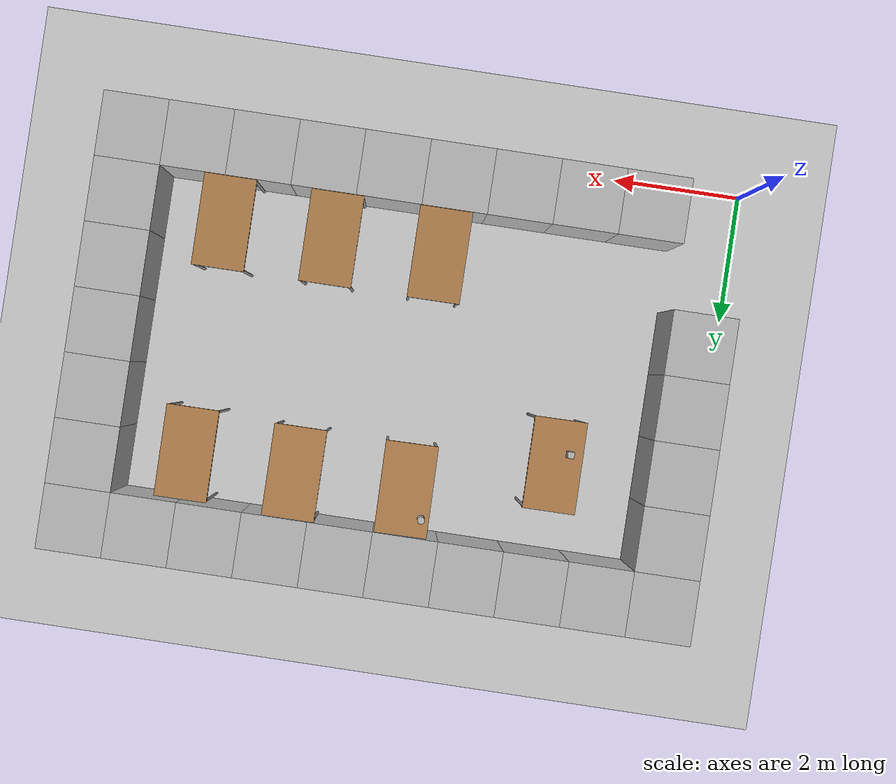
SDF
<sdf version="1.6">
 <world name="default">
  <light name="sun" type="directional">
   <diffuse>0.8 0.8 0.8 1</diffuse>
   <specular>0.1 0.1 0.1 1</specular>
   <attenuation>
    <range>1000</range>
    <constant>0.9</constant>
    <linear>0.01</linear>
    <quadratic>0.001</quadratic>
   </attenuation>
   <direction>-0.5 0.5 -1</direction>
  </light>
  <model name="box_0_2">
   <pose>0.5 2.5 0.5 0 -0 0</pose>
   <static>1</static>
   <link name="link">
    <collision name="collision"><geometry><box><size>1 1 1</size></box></geometry></collision>
    <visual name="visual"><geometry><box><size>1 1 1</size></box></geometry></visual>
   </link>
  </model>
  <model name="box_0_3">
   <pose>0.5 3.5 0.5 0 -0 0</pose>
   <static>1</static>
   <link name="link">
    <collision name="collision"><geometry><box><size>1 1 1</size></box></geometry></collision>
    <visual name="visual"><geometry><box><size>1 1 1</size></box></geometry></visual>
   </link>
  </model>
  <model name="box_0_4">
   <pose>0.5 4.5 0.5 0 -0 0</pose>
   <static>1</static>
   <link name="link">
    <collision name="collision"><geometry><box><size>1 1 1</size></box></geometry></collision>
    <visual name="visual"><geometry><box><size>1 1 1</size></box></geometry></visual>
   </link>
  </model>
  <model name="box_0_5">
   <pose>0.5 5.5 0.5 0 -0 0</pose>
   <static>1</static>
   <link name="link">
    <collision name="collision"><geometry><box><size>1 1 1</size></box></geometry></collision>
    <visual name="visual"><geometry><box><size>1 1 1</size></box></geometry></visual>
   </link>
  </model>
  <model name="box_0_6">
   <pose>0.5 6.5 0.5 0 -0 0</pose>
   <static>1</static>
   <link name="link">
    <collision name="collision"><geometry><box><size>1 1 1</size></box></geometry></collision>
    <visual name="visual"><geometry><box><size>1 1 1</size></box></geometry></visual>
   </link>
  </model>
  <model name="box_1_0">
   <pose>1.5 0.5 0.5 0 -0 0</pose>
   <static>1</static>
   <link name="link">
    <collision name="collision"><geometry><box><size>1 1 1</size></box></geometry></collision>
    <visual name="visual"><geometry><box><size>1 1 1</size></box></geometry></visual>
   </link>
  </model>
  <model name="box_1_6">
   <pose>1.5 6.5 0.5 0 -0 0</pose>
   <static>1</static>
   <link name="link">
    <collision name="collision"><geometry><box><size>1 1 1</size></box></geometry></collision>
    <visual name="visual"><geometry><box><size>1 1 1</size></box></geometry></visual>
   </link>
  </model>
  <model name="box_2_0">
   <pose>2.5 0.5 0.5 0 -0 0</pose>
   <static>1</static>
   <link name="link">
    <collision name="collision"><geometry><box><size>1 1 1</size></box></geometry></collision>
    <visual name="visual"><geometry><box><size>1 1 1</size></box></geometry></visual>
   </link>
  </model>
  <model name="box_2_6">
   <pose>2.5 6.5 0.5 0 -0 0</pose>
   <static>1</static>
   <link name="link">
    <collision name="collision"><geometry><box><size>1 1 1</size></box></geometry></collision>
    <visual name="visual"><geometry><box><size>1 1 1</size></box></geometry></visual>
   </link>
  </model>
  <model name="box_3_0">
   <pose>3.5 0.5 0.5 0 -0 0</pose>
   <static>1</static>
   <link name="link">
    <collision name="collision"><geometry><box><size>1 1 1</size></box></geometry></collision>
    <visual name="visual"><geometry><box><size>1 1 1</size></box></geometry></visual>
   </link>
  </model>
  <model name="box_3_6">
   <pose>3.5 6.5 0.5 0 -0 0</pose>
   <static>1</static>
   <link name="link">
    <collision name="collision"><geometry><box><size>1 1 1</size></box></geometry></collision>
    <visual name="visual"><geometry><box><size>1 1 1</size></box></geometry></visual>
   </link>
  </model>
  <model name="box_4_0">
   <pose>4.5 0.5 0.5 0 -0 0</pose>
   <static>1</static>
   <link name="link">
    <collision name="collision"><geometry><box><size>1 1 1</size></box></geometry></collision>
    <visual name="visual"><geometry><box><size>1 1 1</size></box></geometry></visual>
   </link>
  </model>
  <model name="box_4_6">
   <pose>4.5 6.5 0.5 0 -0 0</pose>
   <static>1</static>
   <link name="link">
    <collision name="collision"><geometry><box><size>1 1 1</size></box></geometry></collision>
    <visual name="visual"><geometry><box><size>1 1 1</size></box></geometry></visual>
   </link>
  </model>
  <model name="box_5_0">
   <pose>5.5 0.5 0.5 0 -0 0</pose>
   <static>1</static>
   <link name="link">
    <collision name="collision"><geometry><box><size>1 1 1</size></box></geometry></collision>
    <visual name="visual"><geometry><box><size>1 1 1</size></box></geometry></visual>
   </link>
  </model>
  <model name="box_5_6">
   <pose>5.5 6.5 0.5 0 -0 0</pose>
   <static>1</static>
   <link name="link">
    <collision name="collision"><geometry><box><size>1 1 1</size></box></geometry></collision>
    <visual name="visual"><geometry><box><size>1 1 1</size></box></geometry></visual>
   </link>
  </model>
  <model name="box_6_0">
   <pose>6.5 0.5 0.5 0 -0 0</pose>
   <static>1</static>
   <link name="link">
    <collision name="collision"><geometry><box><size>1 1 1</size></box></geometry></collision>
    <visual name="visual"><geometry><box><size>1 1 1</size></box></geometry></visual>
   </link>
  </model>
  <model name="box_6_6">
   <pose>6.5 6.5 0.5 0 -0 0</pose>
   <static>1</static>
   <link name="link">
    <collision name="collision"><geometry><box><size>1 1 1</size></box></geometry></collision>
    <visual name="visual"><geometry><box><size>1 1 1</size></box></geometry></visual>
   </link>
  </model>
  <model name="box_7_0">
   <pose>7.5 0.5 0.5 0 -0 0</pose>
   <static>1</static>
   <link name="link">
    <collision name="collision"><geometry><box><size>1 1 1</size></box></geometry></collision>
    <visual name="visual"><geometry><box><size>1 1 1</size></box></geometry></visual>
   </link>
  </model>
  <model name="box_7_6">
   <pose>7.5 6.5 0.5 0 -0 0</pose>
   <static>1</static>
   <link name="link">
    <collision name="collision"><geometry><box><size>1 1 1</size></box></geometry></collision>
    <visual name="visual"><geometry><box><size>1 1 1</size></box></geometry></visual>
   </link>
  </model>
  <model name="box_8_0">
   <pose>8.5 0.5 0.5 0 -0 0</pose>
   <static>1</static>
   <link name="link">
    <collision name="collision"><geometry><box><size>1 1 1</size></box></geometry></collision>
    <visual name="visual"><geometry><box><size>1 1 1</size></box></geometry></visual>
   </link>
  </model>
  <model name="box_8_6">
   <pose>8.5 6.5 0.5 0 -0 0</pose>
   <static>1</static>
   <link name="link">
    <collision name="collision"><geometry><box><size>1 1 1</size></box></geometry></collision>
    <visual name="visual"><geometry><box><size>1 1 1</size></box></geometry></visual>
   </link>
  </model>
  <model name="box_9_0">
   <pose>9.5 0.5 0.5 0 -0 0</pose>
   <static>1</static>
   <link name="link">
    <collision name="collision"><geometry><box><size>1 1 1</size></box></geometry></collision>
    <visual name="visual"><geometry><box><size>1 1 1</size></box></geometry></visual>
   </link>
  </model>
  <model name="box_9_1">
   <pose>9.5 1.5 0.5 0 -0 0</pose>
   <static>1</static>
   <link name="link">
    <collision name="collision"><geometry><box><size>1 1 1</size></box></geometry></collision>
    <visual name="visual"><geometry><box><size>1 1 1</size></box></geometry></visual>
   </link>
  </model>
  <model name="box_9_2">
   <pose>9.5 2.5 0.5 0 -0 0</pose>
   <static>1</static>
   <link name="link">
    <collision name="collision"><geometry><box><size>1 1 1</size></box></geometry></collision>
    <visual name="visual"><geometry><box><size>1 1 1</size></box></geometry></visual>
   </link>
  </model>
  <model name="box_9_3">
   <pose>9.5 3.5 0.5 0 -0 0</pose>
   <static>1</static>
   <link name="link">
    <collision name="collision"><geometry><box><size>1 1 1</size></box></geometry></collision>
    <visual name="visual"><geometry><box><size>1 1 1</size></box></geometry></visual>
   </link>
  </model>
  <model name="box_9_4">
   <pose>9.5 4.5 0.5 0 -0 0</pose>
   <static>1</static>
   <link name="link">
    <collision name="collision"><geometry><box><size>1 1 1</size></box></geometry></collision>
    <visual name="visual"><geometry><box><size>1 1 1</size></box></geometry></visual>
   </link>
  </model>
  <model name="box_9_5">
   <pose>9.5 5.5 0.5 0 -0 0</pose>
   <static>1</static>
   <link name="link">
    <collision name="collision"><geometry><box><size>1 1 1</size></box></geometry></collision>
    <visual name="visual"><geometry><box><size>1 1 1</size></box></geometry></visual>
   </link>
  </model>
  <model name="box_9_6">
   <pose>9.5 6.5 0.5 0 -0 0</pose>
   <static>1</static>
   <link name="link">
    <collision name="collision"><geometry><box><size>1 1 1</size></box></geometry></collision>
    <visual name="visual"><geometry><box><size>1 1 1</size></box></geometry></visual>
   </link>
  </model>
  <gravity>0 0 -9.8</gravity>
  <magnetic_field>6e-06 2.3e-05 -4.2e-05</magnetic_field>
  <atmosphere type="adiabatic"/>
  <physics name="default_physics" default="0" type="ode">
   <max_step_size>0.001</max_step_size>
   <real_time_factor>1</real_time_factor>
   <real_time_update_rate>1000</real_time_update_rate>
  </physics>
  <scene><ambient>0.4 0.4 0.4 1</ambient><background>0.7 0.7 0.7 1</background><shadows>1</shadows></scene>
  <spherical_coordinates>
   <surface_model>EARTH_WGS84</surface_model>
   <latitude_deg>0</latitude_deg>
   <longitude_deg>0</longitude_deg>
   <elevation>0</elevation>
   <heading_deg>0</heading_deg>
  </spherical_coordinates>
  <model name="table">
   <static>0</static>
   <link name="link">
    <collision name="surface">
     <pose>0 0 1 0 -0 0</pose>
     <geometry><box><size>1.5 0.8 0.03</size></box></geometry>
     <surface><friction><ode><mu>0.6</mu><mu2>0.6</mu2></ode></friction></surface>
    </collision>
    <visual name="visual1">
     <pose>0 0 1 0 -0 0</pose>
     <geometry><box><size>1.4 0.8 0.04</size></box></geometry>
     <material>
      <script><uri>file://media/materials/scripts/gazebo.material</uri><name>Gazebo/Wood</name></script>
     </material>
    </visual>
    <collision name="front_left_leg">
     <pose>0.68 0.38 0.5 0 -0 0</pose>
     <geometry><cylinder><radius>0.02</radius><length>1</length></cylinder></geometry>
    </collision>
    <visual name="front_left_leg">
     <pose>0.68 0.38 0.5 0 -0 0</pose>
     <geometry><cylinder><radius>0.02</radius><length>1</length></cylinder></geometry>
     <material>
      <script><uri>file://media/materials/scripts/gazebo.material</uri><name>Gazebo/Grey</name></script>
     </material>
    </visual>
    <collision name="front_right_leg">
     <pose>0.68 -0.38 0.5 0 -0 0</pose>
     <geometry><cylinder><radius>0.02</radius><length>1</length></cylinder></geometry>
    </collision>
    <visual name="front_right_leg">
     <pose>0.68 -0.38 0.5 0 -0 0</pose>
     <geometry><cylinder><radius>0.02</radius><length>1</length></cylinder></geometry>
     <material>
      <script><uri>file://media/materials/scripts/gazebo.material</uri><name>Gazebo/Grey</name></script>
     </material>
    </visual>
    <collision name="back_right_leg">
     <pose>-0.68 -0.38 0.5 0 -0 0</pose>
     <geometry><cylinder><radius>0.02</radius><length>1</length></cylinder></geometry>
    </collision>
    <visual name="back_right_leg">
     <pose>-0.68 -0.38 0.5 0 -0 0</pose>
     <geometry><cylinder><radius>0.02</radius><length>1</length></cylinder></geometry>
     <material>
      <script><uri>file://media/materials/scripts/gazebo.material</uri><name>Gazebo/Grey</name></script>
     </material>
    </visual>
    <collision name="back_left_leg">
     <pose>-0.68 0.38 0.5 0 -0 0</pose>
     <geometry><cylinder><radius>0.02</radius><length>1</length></cylinder></geometry>
    </collision>
    <visual name="back_left_leg">
     <pose>-0.68 0.38 0.5 0 -0 0</pose>
     <geometry><cylinder><radius>0.02</radius><length>1</length></cylinder></geometry>
     <material>
      <script><uri>file://media/materials/scripts/gazebo.material</uri><name>Gazebo/Grey</name></script>
     </material>
    </visual>
    <inertial>
     <inertia><ixx>1</ixx><ixy>0</ixy><ixz>0</ixz><iyy>1</iyy><iyz>0</iyz><izz>1</izz></inertia>
     <mass>1</mass>
    </inertial>
   </link>
   <pose>2.42928 4.59259 -2e-06 -1e-06 0 1.57609</pose>
  </model>
  <model name="table_clone">
   <static>0</static>
   <link name="link">
    <collision name="surface">
     <pose>0 0 1 0 -0 0</pose>
     <geometry><box><size>1.5 0.8 0.03</size></box></geometry>
     <surface><friction><ode><mu>0.6</mu><mu2>0.6</mu2></ode></friction></surface>
    </collision>
    <visual name="visual1">
     <pose>0 0 1 0 -0 0</pose>
     <geometry><box><size>1.4 0.8 0.04</size></box></geometry>
     <material>
      <script><uri>file://media/materials/scripts/gazebo.material</uri><name>Gazebo/Wood</name></script>
     </material>
    </visual>
    <collision name="front_left_leg">
     <pose>0.68 0.38 0.5 0 -0 0</pose>
     <geometry><cylinder><radius>0.02</radius><length>1</length></cylinder></geometry>
    </collision>
    <visual name="front_left_leg">
     <pose>0.68 0.38 0.5 0 -0 0</pose>
     <geometry><cylinder><radius>0.02</radius><length>1</length></cylinder></geometry>
     <material>
      <script><uri>file://media/materials/scripts/gazebo.material</uri><name>Gazebo/Grey</name></script>
     </material>
    </visual>
    <collision name="front_right_leg">
     <pose>0.68 -0.38 0.5 0 -0 0</pose>
     <geometry><cylinder><radius>0.02</radius><length>1</length></cylinder></geometry>
    </collision>
    <visual name="front_right_leg">
     <pose>0.68 -0.38 0.5 0 -0 0</pose>
     <geometry><cylinder><radius>0.02</radius><length>1</length></cylinder></geometry>
     <material>
      <script><uri>file://media/materials/scripts/gazebo.material</uri><name>Gazebo/Grey</name></script>
     </material>
    </visual>
    <collision name="back_right_leg">
     <pose>-0.68 -0.38 0.5 0 -0 0</pose>
     <geometry><cylinder><radius>0.02</radius><length>1</length></cylinder></geometry>
    </collision>
    <visual name="back_right_leg">
     <pose>-0.68 -0.38 0.5 0 -0 0</pose>
     <geometry><cylinder><radius>0.02</radius><length>1</length></cylinder></geometry>
     <material>
      <script><uri>file://media/materials/scripts/gazebo.material</uri><name>Gazebo/Grey</name></script>
     </material>
    </visual>
    <collision name="back_left_leg">
     <pose>-0.68 0.38 0.5 0 -0 0</pose>
     <geometry><cylinder><radius>0.02</radius><length>1</length></cylinder></geometry>
    </collision>
    <visual name="back_left_leg">
     <pose>-0.68 0.38 0.5 0 -0 0</pose>
     <geometry><cylinder><radius>0.02</radius><length>1</length></cylinder></geometry>
     <material>
      <script><uri>file://media/materials/scripts/gazebo.material</uri><name>Gazebo/Grey</name></script>
     </material>
    </visual>
    <inertial>
     <inertia><ixx>1</ixx><ixy>0</ixy><ixz>0</ixz><iyy>1</iyy><iyz>0</iyz><izz>1</izz></inertia>
     <mass>1</mass>
    </inertial>
   </link>
   <pose>4.59278 5.29472 -0.000524 -0.001198 -0.009085 1.58478</pose>
  </model>
  <model name="table_clone_clone">
   <static>0</static>
   <link name="link">
    <collision name="surface">
     <pose>0 0 1 0 -0 0</pose>
     <geometry><box><size>1.5 0.8 0.03</size></box></geometry>
     <surface><friction><ode><mu>0.6</mu><mu2>0.6</mu2></ode></friction></surface>
    </collision>
    <visual name="visual1">
     <pose>0 0 1 0 -0 0</pose>
     <geometry><box><size>1.4 0.8 0.04</size></box></geometry>
     <material>
      <script><uri>file://media/materials/scripts/gazebo.material</uri><name>Gazebo/Wood</name></script>
     </material>
    </visual>
    <collision name="front_left_leg">
     <pose>0.68 0.38 0.5 0 -0 0</pose>
     <geometry><cylinder><radius>0.02</radius><length>1</length></cylinder></geometry>
    </collision>
    <visual name="front_left_leg">
     <pose>0.68 0.38 0.5 0 -0 0</pose>
     <geometry><cylinder><radius>0.02</radius><length>1</length></cylinder></geometry>
     <material>
      <script><uri>file://media/materials/scripts/gazebo.material</uri><name>Gazebo/Grey</name></script>
     </material>
    </visual>
    <collision name="front_right_leg">
     <pose>0.68 -0.38 0.5 0 -0 0</pose>
     <geometry><cylinder><radius>0.02</radius><length>1</length></cylinder></geometry>
    </collision>
    <visual name="front_right_leg">
     <pose>0.68 -0.38 0.5 0 -0 0</pose>
     <geometry><cylinder><radius>0.02</radius><length>1</length></cylinder></geometry>
     <material>
      <script><uri>file://media/materials/scripts/gazebo.material</uri><name>Gazebo/Grey</name></script>
     </material>
    </visual>
    <collision name="back_right_leg">
     <pose>-0.68 -0.38 0.5 0 -0 0</pose>
     <geometry><cylinder><radius>0.02</radius><length>1</length></cylinder></geometry>
    </collision>
    <visual name="back_right_leg">
     <pose>-0.68 -0.38 0.5 0 -0 0</pose>
     <geometry><cylinder><radius>0.02</radius><length>1</length></cylinder></geometry>
     <material>
      <script><uri>file://media/materials/scripts/gazebo.material</uri><name>Gazebo/Grey</name></script>
     </material>
    </visual>
    <collision name="back_left_leg">
     <pose>-0.68 0.38 0.5 0 -0 0</pose>
     <geometry><cylinder><radius>0.02</radius><length>1</length></cylinder></geometry>
    </collision>
    <visual name="back_left_leg">
     <pose>-0.68 0.38 0.5 0 -0 0</pose>
     <geometry><cylinder><radius>0.02</radius><length>1</length></cylinder></geometry>
     <material>
      <script><uri>file://media/materials/scripts/gazebo.material</uri><name>Gazebo/Grey</name></script>
     </material>
    </visual>
    <inertial>
     <inertia><ixx>1</ixx><ixy>0</ixy><ixz>0</ixz><iyy>1</iyy><iyz>0</iyz><izz>1</izz></inertia>
     <mass>1</mass>
    </inertial>
   </link>
   <pose>6.29753 5.29892 0.007472 -3.2e-05 -0.010657 1.57376</pose>
  </model>
  <model name="table_clone_clone_0">
   <static>0</static>
   <link name="link">
    <collision name="surface">
     <pose>0 0 1 0 -0 0</pose>
     <geometry><box><size>1.5 0.8 0.03</size></box></geometry>
     <surface><friction><ode><mu>0.6</mu><mu2>0.6</mu2></ode></friction></surface>
    </collision>
    <visual name="visual1">
     <pose>0 0 1 0 -0 0</pose>
     <geometry><box><size>1.4 0.8 0.04</size></box></geometry>
     <material>
      <script><uri>file://media/materials/scripts/gazebo.material</uri><name>Gazebo/Wood</name></script>
     </material>
    </visual>
    <collision name="front_left_leg">
     <pose>0.68 0.38 0.5 0 -0 0</pose>
     <geometry><cylinder><radius>0.02</radius><length>1</length></cylinder></geometry>
    </collision>
    <visual name="front_left_leg">
     <pose>0.68 0.38 0.5 0 -0 0</pose>
     <geometry><cylinder><radius>0.02</radius><length>1</length></cylinder></geometry>
     <material>
      <script><uri>file://media/materials/scripts/gazebo.material</uri><name>Gazebo/Grey</name></script>
     </material>
    </visual>
    <collision name="front_right_leg">
     <pose>0.68 -0.38 0.5 0 -0 0</pose>
     <geometry><cylinder><radius>0.02</radius><length>1</length></cylinder></geometry>
    </collision>
    <visual name="front_right_leg">
     <pose>0.68 -0.38 0.5 0 -0 0</pose>
     <geometry><cylinder><radius>0.02</radius><length>1</length></cylinder></geometry>
     <material>
      <script><uri>file://media/materials/scripts/gazebo.material</uri><name>Gazebo/Grey</name></script>
     </material>
    </visual>
    <collision name="back_right_leg">
     <pose>-0.68 -0.38 0.5 0 -0 0</pose>
     <geometry><cylinder><radius>0.02</radius><length>1</length></cylinder></geometry>
    </collision>
    <visual name="back_right_leg">
     <pose>-0.68 -0.38 0.5 0 -0 0</pose>
     <geometry><cylinder><radius>0.02</radius><length>1</length></cylinder></geometry>
     <material>
      <script><uri>file://media/materials/scripts/gazebo.material</uri><name>Gazebo/Grey</name></script>
     </material>
    </visual>
    <collision name="back_left_leg">
     <pose>-0.68 0.38 0.5 0 -0 0</pose>
     <geometry><cylinder><radius>0.02</radius><length>1</length></cylinder></geometry>
    </collision>
    <visual name="back_left_leg">
     <pose>-0.68 0.38 0.5 0 -0 0</pose>
     <geometry><cylinder><radius>0.02</radius><length>1</length></cylinder></geometry>
     <material>
      <script><uri>file://media/materials/scripts/gazebo.material</uri><name>Gazebo/Grey</name></script>
     </material>
    </visual>
    <inertial>
     <inertia><ixx>1</ixx><ixy>0</ixy><ixz>0</ixz><iyy>1</iyy><iyz>0</iyz><izz>1</izz></inertia>
     <mass>1</mass>
    </inertial>
   </link>
   <pose>7.94709 5.23838 -1e-06 0 -1e-06 1.57672</pose>
  </model>
  <model name="table_clone_clone_1">
   <static>0</static>
   <link name="link">
    <collision name="surface">
     <pose>0 0 1 0 -0 0</pose>
     <geometry><box><size>1.5 0.8 0.03</size></box></geometry>
     <surface><friction><ode><mu>0.6</mu><mu2>0.6</mu2></ode></friction></surface>
    </collision>
    <visual name="visual1">
     <pose>0 0 1 0 -0 0</pose>
     <geometry><box><size>1.4 0.8 0.04</size></box></geometry>
     <material>
      <script><uri>file://media/materials/scripts/gazebo.material</uri><name>Gazebo/Wood</name></script>
     </material>
    </visual>
    <collision name="front_left_leg">
     <pose>0.68 0.38 0.5 0 -0 0</pose>
     <geometry><cylinder><radius>0.02</radius><length>1</length></cylinder></geometry>
    </collision>
    <visual name="front_left_leg">
     <pose>0.68 0.38 0.5 0 -0 0</pose>
     <geometry><cylinder><radius>0.02</radius><length>1</length></cylinder></geometry>
     <material>
      <script><uri>file://media/materials/scripts/gazebo.material</uri><name>Gazebo/Grey</name></script>
     </material>
    </visual>
    <collision name="front_right_leg">
     <pose>0.68 -0.38 0.5 0 -0 0</pose>
     <geometry><cylinder><radius>0.02</radius><length>1</length></cylinder></geometry>
    </collision>
    <visual name="front_right_leg">
     <pose>0.68 -0.38 0.5 0 -0 0</pose>
     <geometry><cylinder><radius>0.02</radius><length>1</length></cylinder></geometry>
     <material>
      <script><uri>file://media/materials/scripts/gazebo.material</uri><name>Gazebo/Grey</name></script>
     </material>
    </visual>
    <collision name="back_right_leg">
     <pose>-0.68 -0.38 0.5 0 -0 0</pose>
     <geometry><cylinder><radius>0.02</radius><length>1</length></cylinder></geometry>
    </collision>
    <visual name="back_right_leg">
     <pose>-0.68 -0.38 0.5 0 -0 0</pose>
     <geometry><cylinder><radius>0.02</radius><length>1</length></cylinder></geometry>
     <material>
      <script><uri>file://media/materials/scripts/gazebo.material</uri><name>Gazebo/Grey</name></script>
     </material>
    </visual>
    <collision name="back_left_leg">
     <pose>-0.68 0.38 0.5 0 -0 0</pose>
     <geometry><cylinder><radius>0.02</radius><length>1</length></cylinder></geometry>
    </collision>
    <visual name="back_left_leg">
     <pose>-0.68 0.38 0.5 0 -0 0</pose>
     <geometry><cylinder><radius>0.02</radius><length>1</length></cylinder></geometry>
     <material>
      <script><uri>file://media/materials/scripts/gazebo.material</uri><name>Gazebo/Grey</name></script>
     </material>
    </visual>
    <inertial>
     <inertia><ixx>1</ixx><ixy>0</ixy><ixz>0</ixz><iyy>1</iyy><iyz>0</iyz><izz>1</izz></inertia>
     <mass>1</mass>
    </inertial>
   </link>
   <pose>4.61627 1.70014 0.007472 5e-06 0.010672 1.57126</pose>
  </model>
  <model name="table_clone_clone_2">
   <static>0</static>
   <link name="link">
    <collision name="surface">
     <pose>0 0 1 0 -0 0</pose>
     <geometry><box><size>1.5 0.8 0.03</size></box></geometry>
     <surface><friction><ode><mu>0.6</mu><mu2>0.6</mu2></ode></friction></surface>
    </collision>
    <visual name="visual1">
     <pose>0 0 1 0 -0 0</pose>
     <geometry><box><size>1.4 0.8 0.04</size></box></geometry>
     <material>
      <script><uri>file://media/materials/scripts/gazebo.material</uri><name>Gazebo/Wood</name></script>
     </material>
    </visual>
    <collision name="front_left_leg">
     <pose>0.68 0.38 0.5 0 -0 0</pose>
     <geometry><cylinder><radius>0.02</radius><length>1</length></cylinder></geometry>
    </collision>
    <visual name="front_left_leg">
     <pose>0.68 0.38 0.5 0 -0 0</pose>
     <geometry><cylinder><radius>0.02</radius><length>1</length></cylinder></geometry>
     <material>
      <script><uri>file://media/materials/scripts/gazebo.material</uri><name>Gazebo/Grey</name></script>
     </material>
    </visual>
    <collision name="front_right_leg">
     <pose>0.68 -0.38 0.5 0 -0 0</pose>
     <geometry><cylinder><radius>0.02</radius><length>1</length></cylinder></geometry>
    </collision>
    <visual name="front_right_leg">
     <pose>0.68 -0.38 0.5 0 -0 0</pose>
     <geometry><cylinder><radius>0.02</radius><length>1</length></cylinder></geometry>
     <material>
      <script><uri>file://media/materials/scripts/gazebo.material</uri><name>Gazebo/Grey</name></script>
     </material>
    </visual>
    <collision name="back_right_leg">
     <pose>-0.68 -0.38 0.5 0 -0 0</pose>
     <geometry><cylinder><radius>0.02</radius><length>1</length></cylinder></geometry>
    </collision>
    <visual name="back_right_leg">
     <pose>-0.68 -0.38 0.5 0 -0 0</pose>
     <geometry><cylinder><radius>0.02</radius><length>1</length></cylinder></geometry>
     <material>
      <script><uri>file://media/materials/scripts/gazebo.material</uri><name>Gazebo/Grey</name></script>
     </material>
    </visual>
    <collision name="back_left_leg">
     <pose>-0.68 0.38 0.5 0 -0 0</pose>
     <geometry><cylinder><radius>0.02</radius><length>1</length></cylinder></geometry>
    </collision>
    <visual name="back_left_leg">
     <pose>-0.68 0.38 0.5 0 -0 0</pose>
     <geometry><cylinder><radius>0.02</radius><length>1</length></cylinder></geometry>
     <material>
      <script><uri>file://media/materials/scripts/gazebo.material</uri><name>Gazebo/Grey</name></script>
     </material>
    </visual>
    <inertial>
     <inertia><ixx>1</ixx><ixy>0</ixy><ixz>0</ixz><iyy>1</iyy><iyz>0</iyz><izz>1</izz></inertia>
     <mass>1</mass>
    </inertial>
   </link>
   <pose>6.2711 1.69997 0.007472 0 0.010674 1.57077</pose>
  </model>
  <model name="table_clone_clone_3">
   <static>0</static>
   <link name="link">
    <collision name="surface">
     <pose>0 0 1 0 -0 0</pose>
     <geometry><box><size>1.5 0.8 0.03</size></box></geometry>
     <surface><friction><ode><mu>0.6</mu><mu2>0.6</mu2></ode></friction></surface>
    </collision>
    <visual name="visual1">
     <pose>0 0 1 0 -0 0</pose>
     <geometry><box><size>1.4 0.8 0.04</size></box></geometry>
     <material>
      <script><uri>file://media/materials/scripts/gazebo.material</uri><name>Gazebo/Wood</name></script>
     </material>
    </visual>
    <collision name="front_left_leg">
     <pose>0.68 0.38 0.5 0 -0 0</pose>
     <geometry><cylinder><radius>0.02</radius><length>1</length></cylinder></geometry>
    </collision>
    <visual name="front_left_leg">
     <pose>0.68 0.38 0.5 0 -0 0</pose>
     <geometry><cylinder><radius>0.02</radius><length>1</length></cylinder></geometry>
     <material>
      <script><uri>file://media/materials/scripts/gazebo.material</uri><name>Gazebo/Grey</name></script>
     </material>
    </visual>
    <collision name="front_right_leg">
     <pose>0.68 -0.38 0.5 0 -0 0</pose>
     <geometry><cylinder><radius>0.02</radius><length>1</length></cylinder></geometry>
    </collision>
    <visual name="front_right_leg">
     <pose>0.68 -0.38 0.5 0 -0 0</pose>
     <geometry><cylinder><radius>0.02</radius><length>1</length></cylinder></geometry>
     <material>
      <script><uri>file://media/materials/scripts/gazebo.material</uri><name>Gazebo/Grey</name></script>
     </material>
    </visual>
    <collision name="back_right_leg">
     <pose>-0.68 -0.38 0.5 0 -0 0</pose>
     <geometry><cylinder><radius>0.02</radius><length>1</length></cylinder></geometry>
    </collision>
    <visual name="back_right_leg">
     <pose>-0.68 -0.38 0.5 0 -0 0</pose>
     <geometry><cylinder><radius>0.02</radius><length>1</length></cylinder></geometry>
     <material>
      <script><uri>file://media/materials/scripts/gazebo.material</uri><name>Gazebo/Grey</name></script>
     </material>
    </visual>
    <collision name="back_left_leg">
     <pose>-0.68 0.38 0.5 0 -0 0</pose>
     <geometry><cylinder><radius>0.02</radius><length>1</length></cylinder></geometry>
    </collision>
    <visual name="back_left_leg">
     <pose>-0.68 0.38 0.5 0 -0 0</pose>
     <geometry><cylinder><radius>0.02</radius><length>1</length></cylinder></geometry>
     <material>
      <script><uri>file://media/materials/scripts/gazebo.material</uri><name>Gazebo/Grey</name></script>
     </material>
    </visual>
    <inertial>
     <inertia><ixx>1</ixx><ixy>0</ixy><ixz>0</ixz><iyy>1</iyy><iyz>0</iyz><izz>1</izz></inertia>
     <mass>1</mass>
    </inertial>
   </link>
   <pose>7.90446 1.70027 0.007472 9e-06 0.01067 1.5716</pose>
  </model>
  <model name="ground_plane">
   <static>1</static>
   <link name="link">
    <collision name="collision">
     <geometry><plane><normal>0 0 1</normal><size>100 100</size></plane></geometry>
     <surface><friction><ode><mu>100</mu><mu2>50</mu2></ode></friction></surface>
    </collision>
    <visual name="visual">
     <cast_shadows>0</cast_shadows>
     <geometry><plane><normal>0 0 1</normal><size>100 100</size></plane></geometry>
     <material>
      <script><uri>file://media/materials/scripts/gazebo.material</uri><name>Gazebo/Grey</name></script>
     </material>
    </visual>
   </link>
   <pose>-5.3892 10.5729 0 0 -0 0</pose>
  </model>
  <model name="beer">
   <link name="link">
    <pose>0 0 0.115 0 -0 0</pose>
    <inertial>
     <mass>0.39</mass>
     <inertia><ixx>0.00058</ixx><ixy>0</ixy><ixz>0</ixz><iyy>0.00058</iyy><iyz>0</iyz><izz>0.00019</izz></inertia>
    </inertial>
    <collision name="collision">
     <geometry><cylinder><radius>0.055</radius><length>0.23</length></cylinder></geometry>
    </collision>
    <visual name="visual">
     <geometry><cylinder><radius>0.055</radius><length>0.23</length></cylinder></geometry>
     <material>
      <script>
       <uri>model://beer/materials/scripts</uri>
       <uri>model://beer/materials/textures</uri>
       <name>Beer/Diffuse</name>
      </script>
     </material>
    </visual>
   </link>
   <pose>4.31069 5.68581 1.01777 0.008885 -0.001204 -0.005144</pose>
  </model>
  <model name="tea_box">
   <link name="link">
    <pose>0 0 0.075 0 -0 0</pose>
    <visual name="visual">
     <geometry><box><size>0.1 0.1 0.15</size></box></geometry>
     <material>
      <script>
       <uri>model://tea_box/materials/scripts</uri>
       <uri>model://tea_box/materials/textures</uri>
       <name>tea_pat</name>
      </script>
     </material>
    </visual>
    <collision name="collision"><geometry><box><size>0.1 0.1 0.15</size></box></geometry></collision>
   </link>
   <static>1</static>
   <pose>2.24064 4.39733 1.03168 0 -0 0</pose>
  </model>
 </world>
</sdf>
